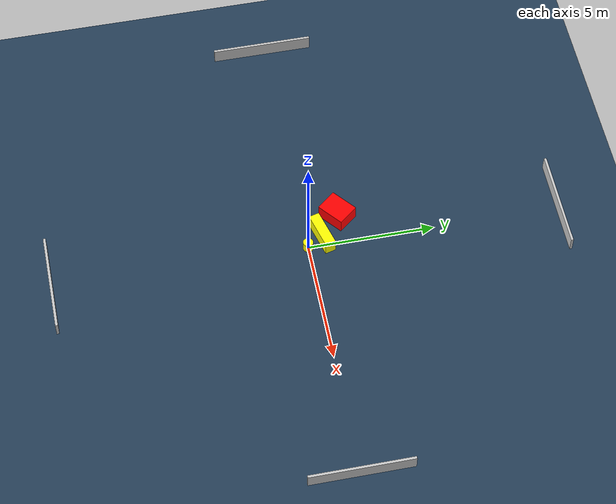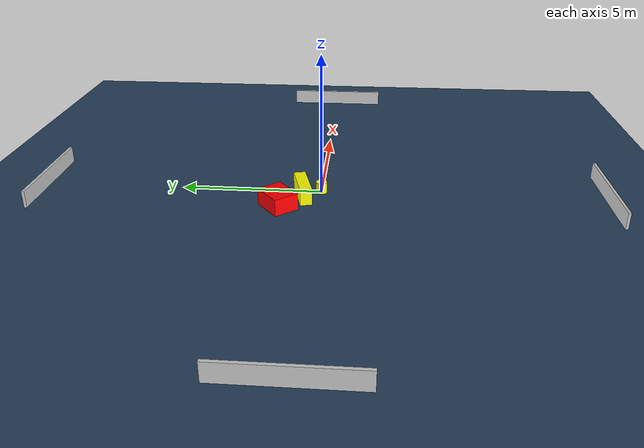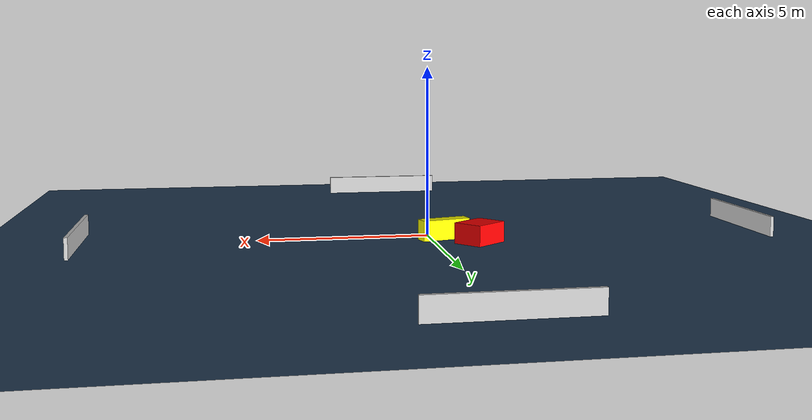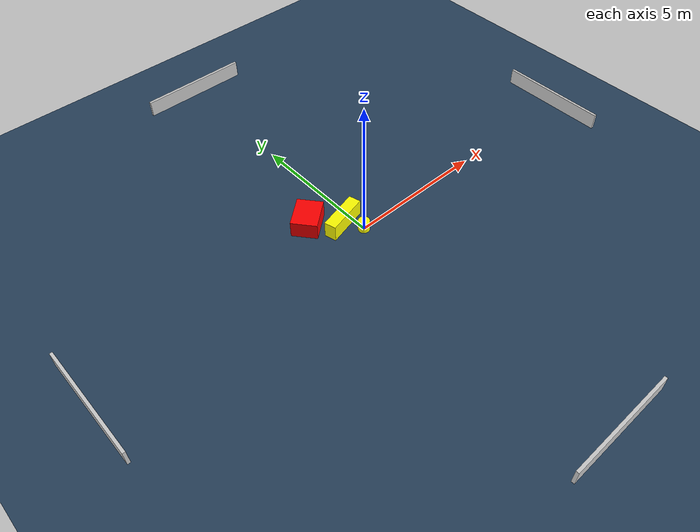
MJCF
<?xml version="1.0" ?>
<mujoco model="generated_environment">
  <option timestep="0.01" integrator="RK4" cone="elliptic"/>
  <default>
    <geom density="1"/>
  </default>
  <asset>
    <texture builtin="gradient" height="3072" name="skybox" rgb1="0.3 0.5 0.7" rgb2="0 0 0" type="skybox" width="512"/>
    <texture builtin="checker" height="300" name="groundplane" rgb1="0.2 0.3 0.4" rgb2="0.1 0.2 0.3" type="2d" width="300"/>
    <material name="groundplane" reflectance="0.2" texrepeat="5 5" texture="groundplane"/>
  </asset>
  <worldbody>
    <light dir="0 0 -1" directional="true" pos="0 0 1.5"/>
    <geom condim="3" friction="0.5 0.005 0.001" material="groundplane" name="floor" pos="0 0 0" size="0 0 0.05" type="plane"/>
    <body name="walls">
      <geom name="wall_1" condim="4" pos="-10.0 0.0 0.3" rgba="0.800000011920929 0.800000011920929 0.800000011920929 1.0" size="0.05 2.0 0.3" type="box"/>
      <geom name="wall_2" condim="4" pos="10.0 0.0 0.3" rgba="0.800000011920929 0.800000011920929 0.800000011920929 1.0" size="0.05 2.0 0.3" type="box"/>
      <geom name="wall_3" condim="4" pos="0.0 -10.0 0.3" rgba="0.800000011920929 0.800000011920929 0.800000011920929 1.0" size="2.0 0.05 0.3" type="box"/>
      <geom name="wall_4" condim="4" pos="0.0 10.0 0.3" rgba="0.800000011920929 0.800000011920929 0.800000011920929 1.0" size="2.0 0.05 0.3" type="box"/>
    </body>
    <body name="robot">
      <joint name="joint_x" type="slide" pos="0 0 0" axis="1 0 0"/>
      <joint name="joint_y" type="slide" pos="0 0 0" axis="0 1 0"/>
      <geom name="robot" type="cylinder" pos="0.0 0.0 0.2" size="0.2 0.2 0.0" mass="5.0" friction="1.0 0.005 0.0001" condim="4" rgba="1.0 1.0 0.0 1.0"/>
    </body>
    <body name="obstacle_1_movable">
      <geom name="obstacle_1_movable" condim="4" pos="-0.38067542135580434 0.6295156911169403 0.3" euler="0 0 194.8090119597689" friction="0.0 0.005 0.001" rgba="1.0 1.0 0.0 1.0" size="0.7374090759467975 0.21182360804990075 0.3" type="box" mass="0.1"/>
      <joint type="free"/>
    </body>
    <body name="obstacle_2_static">
      <geom name="obstacle_2_static" condim="4" pos="-1.2639563778777092 1.4022321954275114 0.3" euler="0 0 309.2906056674153" friction="0.0 0.005 0.001" rgba="1.0 0.0 0.0 1.0" size="0.4534275000823322 0.5689826343030633 0.3" type="box"/>
    </body>
  </worldbody>
  <actuator>
    <motor name="actuator_x" joint="joint_x" gear="1" ctrlrange="-1 1"/>
    <motor name="actuator_y" joint="joint_y" gear="1" ctrlrange="-1 1"/>
  </actuator>
</mujoco>
